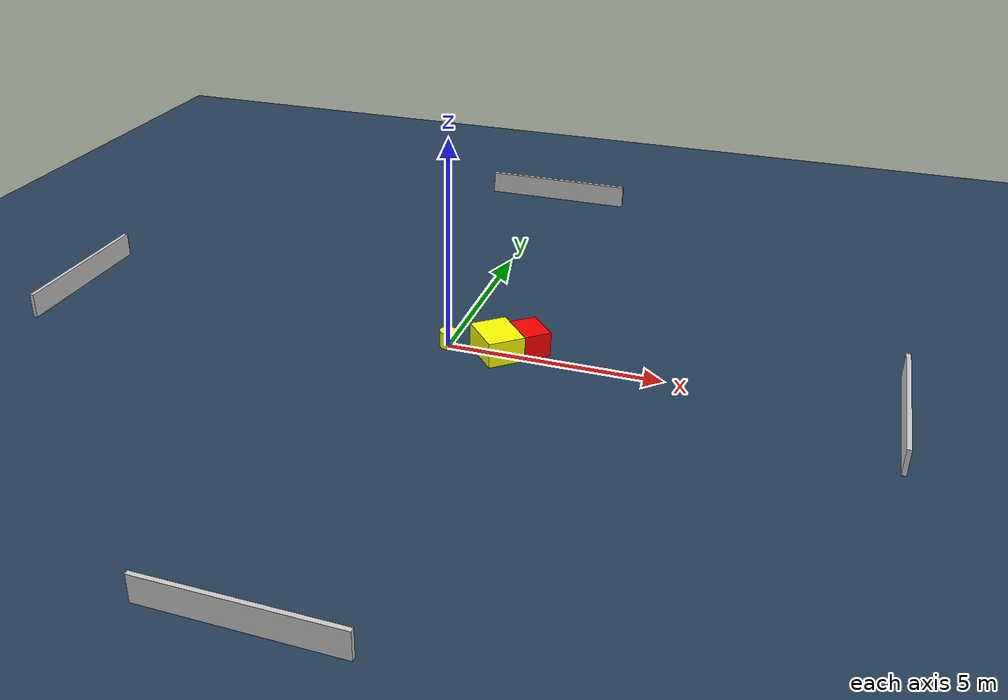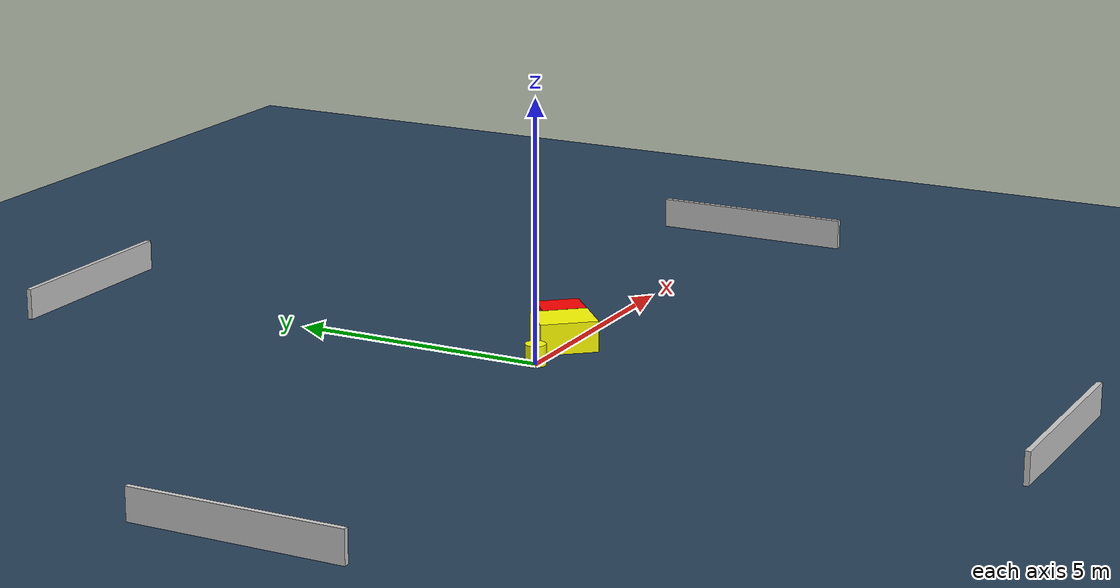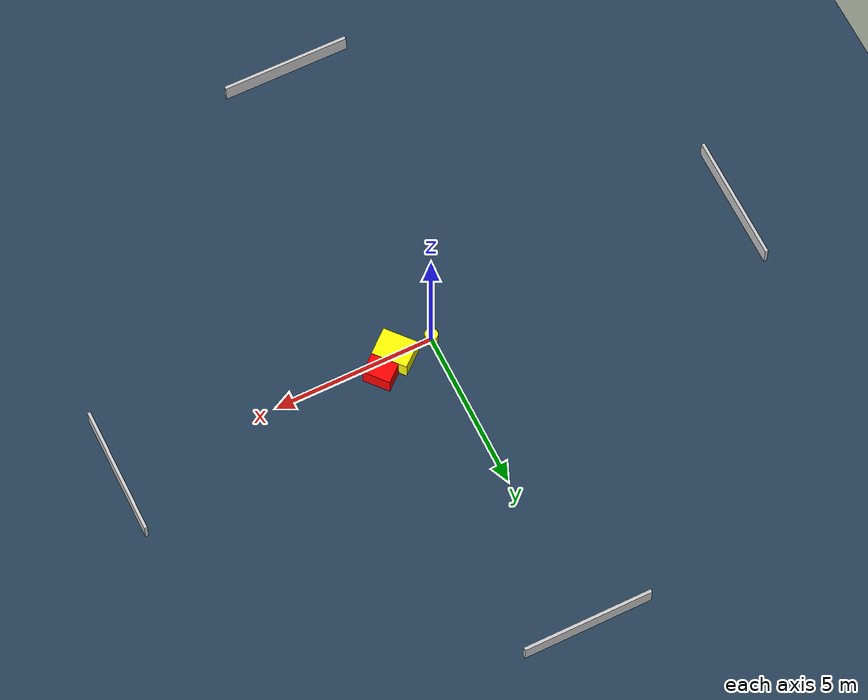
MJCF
<?xml version="1.0" ?>
<mujoco model="generated_environment">
  <option timestep="0.01" integrator="RK4" cone="elliptic"/>
  <default>
    <geom density="1"/>
  </default>
  <asset>
    <texture builtin="gradient" height="3072" name="skybox" rgb1="0.3 0.5 0.7" rgb2="0 0 0" type="skybox" width="512"/>
    <texture builtin="checker" height="300" name="groundplane" rgb1="0.2 0.3 0.4" rgb2="0.1 0.2 0.3" type="2d" width="300"/>
    <material name="groundplane" reflectance="0.2" texrepeat="5 5" texture="groundplane"/>
  </asset>
  <worldbody>
    <light dir="0 0 -1" directional="true" pos="0 0 1.5"/>
    <geom condim="3" friction="0.5 0.005 0.001" material="groundplane" name="floor" pos="0 0 0" size="0 0 0.05" type="plane"/>
    <body name="walls">
      <geom name="wall_1" condim="4" pos="-10.0 0.0 0.3" rgba="0.800000011920929 0.800000011920929 0.800000011920929 1.0" size="0.05 2.0 0.3" type="box"/>
      <geom name="wall_2" condim="4" pos="10.0 0.0 0.3" rgba="0.800000011920929 0.800000011920929 0.800000011920929 1.0" size="0.05 2.0 0.3" type="box"/>
      <geom name="wall_3" condim="4" pos="0.0 -10.0 0.3" rgba="0.800000011920929 0.800000011920929 0.800000011920929 1.0" size="2.0 0.05 0.3" type="box"/>
      <geom name="wall_4" condim="4" pos="0.0 10.0 0.3" rgba="0.800000011920929 0.800000011920929 0.800000011920929 1.0" size="2.0 0.05 0.3" type="box"/>
    </body>
    <body name="robot">
      <joint name="joint_x" type="slide" pos="0 0 0" axis="1 0 0"/>
      <joint name="joint_y" type="slide" pos="0 0 0" axis="0 1 0"/>
      <geom name="robot" type="cylinder" pos="0.0 0.0 0.2" size="0.2 0.2 0.0" mass="5.0" friction="1.0 0.005 0.0001" condim="4" rgba="1.0 1.0 0.0 1.0"/>
    </body>
    <body name="obstacle_1_movable">
      <geom name="obstacle_1_movable" condim="4" pos="1.1798566454311417 0.01418574868284503 0.3" euler="0 0 220.51766106622705" friction="0.0 0.005 0.001" rgba="1.0 1.0 0.0 1.0" size="0.44103014441356214 0.5571218317996176 0.3" type="box" mass="0.1"/>
      <joint type="free"/>
    </body>
    <body name="obstacle_2_static">
      <geom name="obstacle_2_static" condim="4" pos="1.840555835029493 0.4233359472436118 0.3" euler="0 0 130.61993296390776" friction="0.0 0.005 0.001" rgba="1.0 0.0 0.0 1.0" size="0.42712641507175575 0.32189711678963795 0.3" type="box"/>
    </body>
  </worldbody>
  <actuator>
    <motor name="actuator_x" joint="joint_x" gear="1" ctrlrange="-1 1"/>
    <motor name="actuator_y" joint="joint_y" gear="1" ctrlrange="-1 1"/>
  </actuator>
</mujoco>
